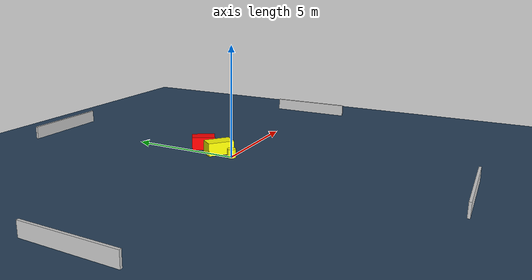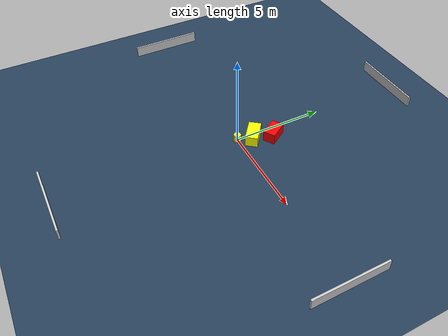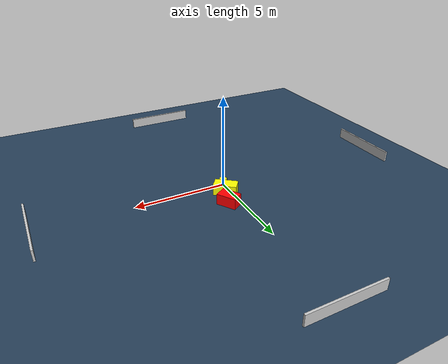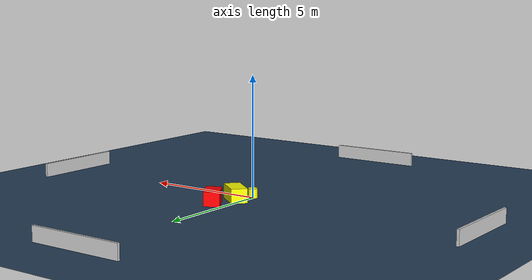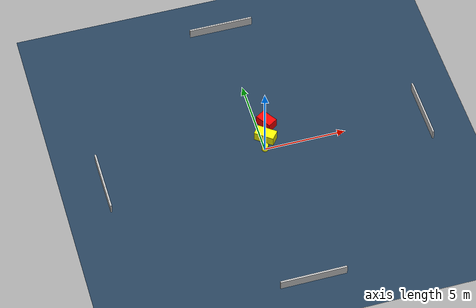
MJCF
<?xml version="1.0" ?>
<mujoco model="generated_environment">
  <option timestep="0.01" integrator="RK4" cone="elliptic"/>
  <default>
    <geom density="1"/>
  </default>
  <asset>
    <texture builtin="gradient" height="3072" name="skybox" rgb1="0.3 0.5 0.7" rgb2="0 0 0" type="skybox" width="512"/>
    <texture builtin="checker" height="300" name="groundplane" rgb1="0.2 0.3 0.4" rgb2="0.1 0.2 0.3" type="2d" width="300"/>
    <material name="groundplane" reflectance="0.2" texrepeat="5 5" texture="groundplane"/>
  </asset>
  <worldbody>
    <light dir="0 0 -1" directional="true" pos="0 0 1.5"/>
    <geom condim="3" friction="0.5 0.005 0.001" material="groundplane" name="floor" pos="0 0 0" size="0 0 0.05" type="plane"/>
    <body name="walls">
      <geom name="wall_1" condim="4" pos="-10.0 0.0 0.3" rgba="0.800000011920929 0.800000011920929 0.800000011920929 1.0" size="0.05 2.0 0.3" type="box"/>
      <geom name="wall_2" condim="4" pos="10.0 0.0 0.3" rgba="0.800000011920929 0.800000011920929 0.800000011920929 1.0" size="0.05 2.0 0.3" type="box"/>
      <geom name="wall_3" condim="4" pos="0.0 -10.0 0.3" rgba="0.800000011920929 0.800000011920929 0.800000011920929 1.0" size="2.0 0.05 0.3" type="box"/>
      <geom name="wall_4" condim="4" pos="0.0 10.0 0.3" rgba="0.800000011920929 0.800000011920929 0.800000011920929 1.0" size="2.0 0.05 0.3" type="box"/>
    </body>
    <body name="robot">
      <joint name="joint_x" type="slide" pos="0 0 0" axis="1 0 0"/>
      <joint name="joint_y" type="slide" pos="0 0 0" axis="0 1 0"/>
      <geom name="robot" type="cylinder" pos="0.0 0.0 0.2" size="0.2 0.2 0.0" mass="5.0" friction="1.0 0.005 0.0001" condim="4" rgba="1.0 1.0 0.0 1.0"/>
    </body>
    <body name="obstacle_1_movable">
      <geom name="obstacle_1_movable" condim="4" pos="0.2718620439959209 0.8052890133665728 0.3" euler="0 0 51.70567408744227" friction="0.0 0.005 0.001" rgba="1.0 1.0 0.0 1.0" size="0.338130030705906 0.6205640600915754 0.3" type="box" mass="0.1"/>
      <joint type="free"/>
    </body>
    <body name="obstacle_2_static">
      <geom name="obstacle_2_static" condim="4" pos="0.6213081374374074 1.8414716404717686 0.3" euler="0 0 122.24632500609694" friction="0.0 0.005 0.001" rgba="1.0 0.0 0.0 1.0" size="0.5278689327431667 0.3286031888963014 0.3" type="box"/>
    </body>
  </worldbody>
  <actuator>
    <motor name="actuator_x" joint="joint_x" gear="1" ctrlrange="-1 1"/>
    <motor name="actuator_y" joint="joint_y" gear="1" ctrlrange="-1 1"/>
  </actuator>
</mujoco>
